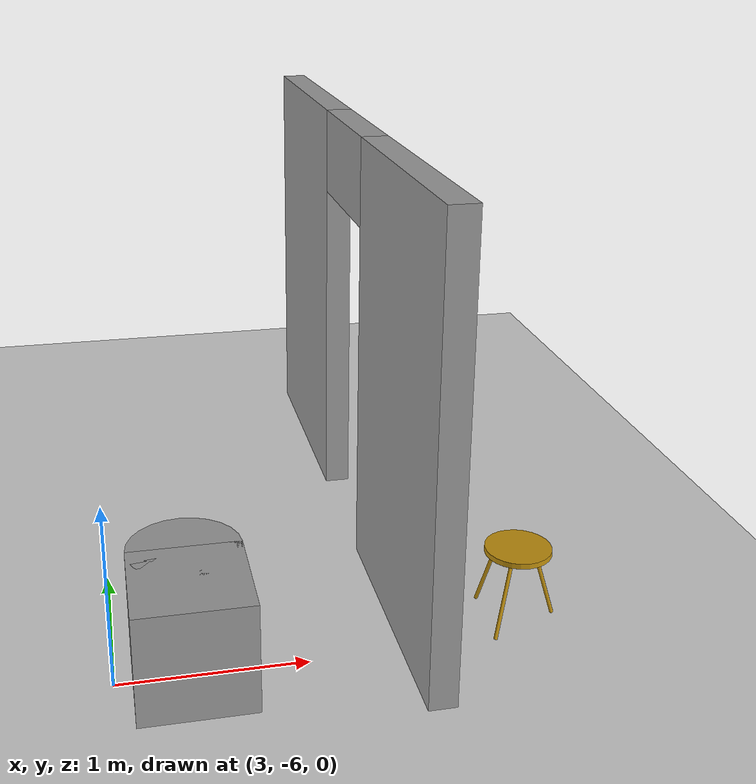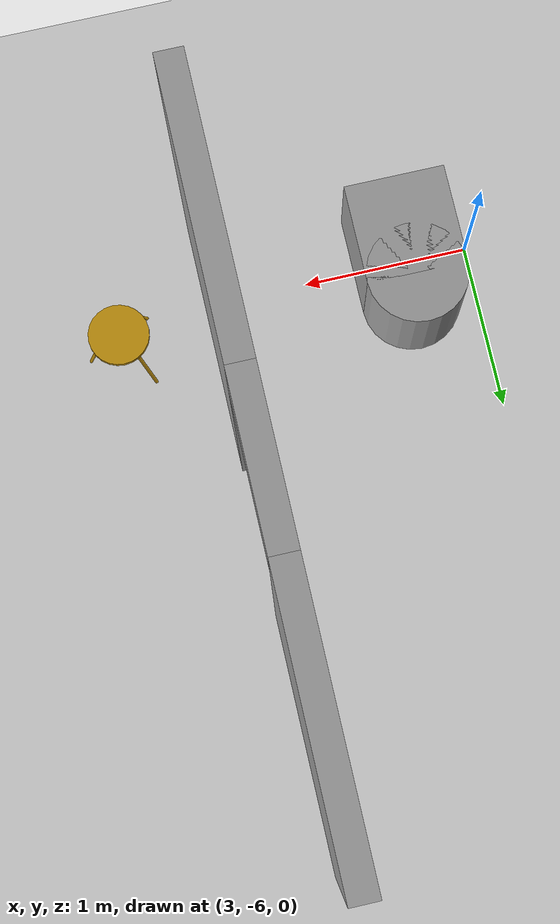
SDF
<sdf version="1.7">
 <world name="default">
  <model name="ground_plane">
   <static>1</static>
   <link name="link">
    <collision name="collision">
     <geometry><plane><normal>0 0 1</normal><size>100 100</size></plane></geometry>
     <surface>
      <contact><collide_bitmask>65535</collide_bitmask></contact>
      <friction><ode><mu>100</mu><mu2>50</mu2></ode></friction>
     </surface>
    </collision>
    <visual name="visual">
     <cast_shadows>0</cast_shadows>
     <geometry><plane><normal>0 0 1</normal><size>100 100</size></plane></geometry>
     <material>
      <script><uri>file://media/materials/scripts/gazebo.material</uri><name>Gazebo/Grey</name></script>
     </material>
    </visual>
   </link>
  </model>
  <model name="my_building_p4">
   <link name="Wall_37">
    <pose>4.57498 -7.45997 0 0 0 -1.57079</pose>
    <visual name="Wall_37_Visual_0">
     <pose>-1.22294 0 1.25 0 -0 0</pose>
     <geometry><box><size>1.55413 0.15 2.5</size></box></geometry>
     <material>
      <script><uri>file://media/materials/scripts/gazebo.material</uri><name>Gazebo/Grey</name></script>
      <ambient>1 1 1 1</ambient>
      <shader type="pixel"/>
     </material>
     <meta><layer>0</layer></meta>
    </visual>
    <visual name="Wall_37_Visual_2">
     <pose>0.004129 0 2.25 0 -0 0</pose>
     <geometry><box><size>0.9 0.15 0.5</size></box></geometry>
     <material>
      <script><uri>file://media/materials/scripts/gazebo.material</uri><name>Gazebo/Grey</name></script>
      <ambient>1 1 1 1</ambient>
      <shader type="pixel"/>
     </material>
     <meta><layer>0</layer></meta>
    </visual>
    <visual name="Wall_37_Visual_1">
     <pose>1.22707 0 1.25 0 -0 0</pose>
     <geometry><box><size>1.54587 0.15 2.5</size></box></geometry>
     <material>
      <script><uri>file://media/materials/scripts/gazebo.material</uri><name>Gazebo/Grey</name></script>
      <ambient>1 1 1 1</ambient>
      <shader type="pixel"/>
     </material>
     <meta><layer>0</layer></meta>
    </visual>
    <collision name="Wall_37_Collision_0">
     <pose>-1.22294 0 1.25 0 -0 0</pose>
     <geometry><box><size>1.55413 0.15 2.5</size></box></geometry>
     <surface>
      <friction>
       <ode><mu>1</mu><mu2>1</mu2><fdir1>0 0 0</fdir1><slip1>0</slip1><slip2>0</slip2></ode>
       <torsional>
        <coefficient>1</coefficient>
        <patch_radius>0</patch_radius>
        <surface_radius>0</surface_radius>
        <use_patch_radius>1</use_patch_radius>
        <ode><slip>0</slip></ode>
       </torsional>
      </friction>
      <bounce><restitution_coefficient>0</restitution_coefficient><threshold>1e+06</threshold></bounce>
      <contact>
       <collide_without_contact>0</collide_without_contact>
       <collide_without_contact_bitmask>1</collide_without_contact_bitmask>
       <collide_bitmask>1</collide_bitmask>
       <ode>
        <soft_cfm>0</soft_cfm>
        <soft_erp>0.2</soft_erp>
        <kp>1e+13</kp>
        <kd>1</kd>
        <max_vel>0.01</max_vel>
        <min_depth>0</min_depth>
       </ode>
       <bullet>
        <split_impulse>1</split_impulse>
        <split_impulse_penetration_threshold>-0.01</split_impulse_penetration_threshold>
        <soft_cfm>0</soft_cfm>
        <soft_erp>0.2</soft_erp>
        <kp>1e+13</kp>
        <kd>1</kd>
       </bullet>
      </contact>
     </surface>
    </collision>
    <collision name="Wall_37_Collision_1">
     <pose>1.22707 0 1.25 0 -0 0</pose>
     <geometry><box><size>1.54587 0.15 2.5</size></box></geometry>
     <surface>
      <friction>
       <ode><mu>1</mu><mu2>1</mu2><fdir1>0 0 0</fdir1><slip1>0</slip1><slip2>0</slip2></ode>
       <torsional>
        <coefficient>1</coefficient>
        <patch_radius>0</patch_radius>
        <surface_radius>0</surface_radius>
        <use_patch_radius>1</use_patch_radius>
        <ode><slip>0</slip></ode>
       </torsional>
      </friction>
      <bounce><restitution_coefficient>0</restitution_coefficient><threshold>1e+06</threshold></bounce>
      <contact>
       <collide_without_contact>0</collide_without_contact>
       <collide_without_contact_bitmask>1</collide_without_contact_bitmask>
       <collide_bitmask>1</collide_bitmask>
       <ode>
        <soft_cfm>0</soft_cfm>
        <soft_erp>0.2</soft_erp>
        <kp>1e+13</kp>
        <kd>1</kd>
        <max_vel>0.01</max_vel>
        <min_depth>0</min_depth>
       </ode>
       <bullet>
        <split_impulse>1</split_impulse>
        <split_impulse_penetration_threshold>-0.01</split_impulse_penetration_threshold>
        <soft_cfm>0</soft_cfm>
        <soft_erp>0.2</soft_erp>
        <kp>1e+13</kp>
        <kd>1</kd>
       </bullet>
      </contact>
     </surface>
    </collision>
    <collision name="Wall_37_Collision_2">
     <pose>0.004129 0 2.25 0 -0 0</pose>
     <geometry><box><size>0.9 0.15 0.5</size></box></geometry>
     <surface>
      <friction>
       <ode><mu>1</mu><mu2>1</mu2><fdir1>0 0 0</fdir1><slip1>0</slip1><slip2>0</slip2></ode>
       <torsional>
        <coefficient>1</coefficient>
        <patch_radius>0</patch_radius>
        <surface_radius>0</surface_radius>
        <use_patch_radius>1</use_patch_radius>
        <ode><slip>0</slip></ode>
       </torsional>
      </friction>
      <bounce><restitution_coefficient>0</restitution_coefficient><threshold>1e+06</threshold></bounce>
      <contact>
       <collide_without_contact>0</collide_without_contact>
       <collide_without_contact_bitmask>1</collide_without_contact_bitmask>
       <collide_bitmask>1</collide_bitmask>
       <ode>
        <soft_cfm>0</soft_cfm>
        <soft_erp>0.2</soft_erp>
        <kp>1e+13</kp>
        <kd>1</kd>
        <max_vel>0.01</max_vel>
        <min_depth>0</min_depth>
       </ode>
       <bullet>
        <split_impulse>1</split_impulse>
        <split_impulse_penetration_threshold>-0.01</split_impulse_penetration_threshold>
        <soft_cfm>0</soft_cfm>
        <soft_erp>0.2</soft_erp>
        <kp>1e+13</kp>
        <kd>1</kd>
       </bullet>
      </contact>
     </surface>
    </collision>
   </link>
   <static>1</static>
   <pose>-0.017657 2.964 0 0 -0 0</pose>
  </model>
  <model name="my_stool">
   <link name="link">
    <inertial>
     <mass>1</mass>
     <inertia><ixx>0.145833</ixx><ixy>0</ixy><ixz>0</ixz><iyy>0.145833</iyy><iyz>0</iyz><izz>0.125</izz></inertia>
    </inertial>
    <gravity>0</gravity>
    <visual name="visual">
     <geometry><cylinder><radius>0.18</radius><length>0.03</length></cylinder></geometry>
     <material>
      <script><name>Gazebo/Grey</name><uri>file://media/materials/scripts/gazebo.material</uri></script>
      <shader type="pixel"><normal_map>__default__</normal_map></shader>
      <ambient>0.75 0.56 0.05 1</ambient>
      <diffuse>0.75 0.56 0.05 1</diffuse>
      <specular>0.01 0.01 0.01 1</specular>
      <emissive>0 0 0 1</emissive>
     </material>
     <pose>0 0 0.42 0 -0 0</pose>
    </visual>
    <collision name="collision">
     <pose>0 0 0.42 0 -0 0</pose>
     <geometry><cylinder><radius>0.18</radius><length>0.03</length></cylinder></geometry>
     <surface>
      <friction>
       <ode><mu>1</mu><mu2>1</mu2><fdir1>0 0 0</fdir1><slip1>0</slip1><slip2>0</slip2></ode>
       <torsional>
        <coefficient>1</coefficient>
        <patch_radius>0</patch_radius>
        <surface_radius>0</surface_radius>
        <use_patch_radius>1</use_patch_radius>
        <ode><slip>0</slip></ode>
       </torsional>
      </friction>
      <bounce><restitution_coefficient>0</restitution_coefficient><threshold>1e+06</threshold></bounce>
      <contact>
       <collide_without_contact>0</collide_without_contact>
       <collide_without_contact_bitmask>1</collide_without_contact_bitmask>
       <collide_bitmask>1</collide_bitmask>
       <ode>
        <soft_cfm>0</soft_cfm>
        <soft_erp>0.2</soft_erp>
        <kp>1e+13</kp>
        <kd>1</kd>
        <max_vel>0.01</max_vel>
        <min_depth>0</min_depth>
       </ode>
       <bullet>
        <split_impulse>1</split_impulse>
        <split_impulse_penetration_threshold>-0.01</split_impulse_penetration_threshold>
        <soft_cfm>0</soft_cfm>
        <soft_erp>0.2</soft_erp>
        <kp>1e+13</kp>
        <kd>1</kd>
       </bullet>
      </contact>
     </surface>
    </collision>
   </link>
   <link name="link_clone">
    <inertial>
     <mass>1</mass>
     <inertia><ixx>0.145833</ixx><ixy>0</ixy><ixz>0</ixz><iyy>0.145833</iyy><iyz>0</iyz><izz>0.125</izz></inertia>
    </inertial>
    <pose>0.154365 -0.002852 0.007514 0 -0 0</pose>
    <gravity>0</gravity>
    <visual name="visual">
     <geometry><cylinder><radius>0.01</radius><length>0.42</length></cylinder></geometry>
     <material>
      <script><name>Gazebo/Grey</name><uri>file://media/materials/scripts/gazebo.material</uri></script>
      <shader type="pixel"><normal_map>__default__</normal_map></shader>
      <ambient>0.75 0.56 0.05 1</ambient>
      <diffuse>0.75 0.56 0.05 1</diffuse>
      <specular>0.01 0.01 0.01 1</specular>
      <emissive>0 0 0 1</emissive>
     </material>
     <pose>0 0 0.196 0 -0.3 0</pose>
    </visual>
    <collision name="collision">
     <pose>0 0 0.196 0 -0.3 0</pose>
     <geometry><cylinder><radius>0.01</radius><length>0.42</length></cylinder></geometry>
     <surface>
      <friction>
       <ode><mu>1</mu><mu2>1</mu2><fdir1>0 0 0</fdir1><slip1>0</slip1><slip2>0</slip2></ode>
       <torsional>
        <coefficient>1</coefficient>
        <patch_radius>0</patch_radius>
        <surface_radius>0</surface_radius>
        <use_patch_radius>1</use_patch_radius>
        <ode><slip>0</slip></ode>
       </torsional>
      </friction>
      <bounce><restitution_coefficient>0</restitution_coefficient><threshold>1e+06</threshold></bounce>
      <contact>
       <collide_without_contact>0</collide_without_contact>
       <collide_without_contact_bitmask>1</collide_without_contact_bitmask>
       <collide_bitmask>1</collide_bitmask>
       <ode>
        <soft_cfm>0</soft_cfm>
        <soft_erp>0.2</soft_erp>
        <kp>1e+13</kp>
        <kd>1</kd>
        <max_vel>0.01</max_vel>
        <min_depth>0</min_depth>
       </ode>
       <bullet>
        <split_impulse>1</split_impulse>
        <split_impulse_penetration_threshold>-0.01</split_impulse_penetration_threshold>
        <soft_cfm>0</soft_cfm>
        <soft_erp>0.2</soft_erp>
        <kp>1e+13</kp>
        <kd>1</kd>
       </bullet>
      </contact>
     </surface>
    </collision>
   </link>
   <link name="link_clone_clone">
    <inertial>
     <mass>1</mass>
     <inertia><ixx>0.145833</ixx><ixy>0</ixy><ixz>0</ixz><iyy>0.145833</iyy><iyz>0</iyz><izz>0.125</izz></inertia>
    </inertial>
    <pose>-0.108427 0.162559 0.007514 0 -0 2.21012</pose>
    <gravity>0</gravity>
    <visual name="visual">
     <geometry><cylinder><radius>0.01</radius><length>0.42</length></cylinder></geometry>
     <material>
      <script><name>Gazebo/Grey</name><uri>file://media/materials/scripts/gazebo.material</uri></script>
      <shader type="pixel"><normal_map>__default__</normal_map></shader>
      <ambient>0.75 0.56 0.05 1</ambient>
      <diffuse>0.75 0.56 0.05 1</diffuse>
      <specular>0.01 0.01 0.01 1</specular>
      <emissive>0 0 0 1</emissive>
     </material>
     <pose>0 0 0.196 0 -0.3 0</pose>
    </visual>
    <collision name="collision">
     <pose>0 0 0.14 0 -0.3 0</pose>
     <geometry><cylinder><radius>0.01</radius><length>0.42</length></cylinder></geometry>
     <surface>
      <friction>
       <ode><mu>1</mu><mu2>1</mu2><fdir1>0 0 0</fdir1><slip1>0</slip1><slip2>0</slip2></ode>
       <torsional>
        <coefficient>1</coefficient>
        <patch_radius>0</patch_radius>
        <surface_radius>0</surface_radius>
        <use_patch_radius>1</use_patch_radius>
        <ode><slip>0</slip></ode>
       </torsional>
      </friction>
      <bounce><restitution_coefficient>0</restitution_coefficient><threshold>1e+06</threshold></bounce>
      <contact>
       <collide_without_contact>0</collide_without_contact>
       <collide_without_contact_bitmask>1</collide_without_contact_bitmask>
       <collide_bitmask>1</collide_bitmask>
       <ode>
        <soft_cfm>0</soft_cfm>
        <soft_erp>0.2</soft_erp>
        <kp>1e+13</kp>
        <kd>1</kd>
        <max_vel>0.01</max_vel>
        <min_depth>0</min_depth>
       </ode>
       <bullet>
        <split_impulse>1</split_impulse>
        <split_impulse_penetration_threshold>-0.01</split_impulse_penetration_threshold>
        <soft_cfm>0</soft_cfm>
        <soft_erp>0.2</soft_erp>
        <kp>1e+13</kp>
        <kd>1</kd>
       </bullet>
      </contact>
     </surface>
    </collision>
   </link>
   <link name="link_clone_clone_clone">
    <inertial>
     <mass>1</mass>
     <inertia><ixx>0.145833</ixx><ixy>0</ixy><ixz>0</ixz><iyy>0.145833</iyy><iyz>0</iyz><izz>0.125</izz></inertia>
    </inertial>
    <pose>-0.123134 -0.149725 0.010416 0 0 -2.45292</pose>
    <visual name="visual">
     <geometry><cylinder><radius>0.01</radius><length>0.42</length></cylinder></geometry>
     <material>
      <script><name>Gazebo/Grey</name><uri>file://media/materials/scripts/gazebo.material</uri></script>
      <shader type="pixel"><normal_map>__default__</normal_map></shader>
      <ambient>0.75 0.56 0.05 1</ambient>
      <diffuse>0.75 0.56 0.05 1</diffuse>
      <specular>0.01 0.01 0.01 1</specular>
      <emissive>0 0 0 1</emissive>
     </material>
     <pose>0 0 0.196 0 -0.3 0</pose>
    </visual>
    <collision name="collision">
     <pose>0 0 0.196 0 -0.3 0</pose>
     <geometry><cylinder><radius>0.01</radius><length>0.42</length></cylinder></geometry>
     <surface>
      <friction>
       <ode><mu>1</mu><mu2>1</mu2><fdir1>0 0 0</fdir1><slip1>0</slip1><slip2>0</slip2></ode>
       <torsional>
        <coefficient>1</coefficient>
        <patch_radius>0</patch_radius>
        <surface_radius>0</surface_radius>
        <use_patch_radius>1</use_patch_radius>
        <ode><slip>0</slip></ode>
       </torsional>
      </friction>
      <bounce><restitution_coefficient>0</restitution_coefficient><threshold>1e+06</threshold></bounce>
      <contact>
       <collide_without_contact>0</collide_without_contact>
       <collide_without_contact_bitmask>1</collide_without_contact_bitmask>
       <collide_bitmask>1</collide_bitmask>
       <ode>
        <soft_cfm>0</soft_cfm>
        <soft_erp>0.2</soft_erp>
        <kp>1e+13</kp>
        <kd>1</kd>
        <max_vel>0.01</max_vel>
        <min_depth>0</min_depth>
       </ode>
       <bullet>
        <split_impulse>1</split_impulse>
        <split_impulse_penetration_threshold>-0.01</split_impulse_penetration_threshold>
        <soft_cfm>0</soft_cfm>
        <soft_erp>0.2</soft_erp>
        <kp>1e+13</kp>
        <kd>1</kd>
       </bullet>
      </contact>
     </surface>
    </collision>
   </link>
   <static>1</static>
   <pose>5.16591 -5.81824 0 0 -0 0</pose>
  </model>
  <model name="my_wc">
   <link name="link_0">
    <inertial>
     <mass>1</mass>
     <inertia><ixx>0.145833</ixx><ixy>0</ixy><ixz>0</ixz><iyy>0.145833</iyy><iyz>0</iyz><izz>0.125</izz></inertia>
    </inertial>
    <pose>-0.099947 0.388834 0 0 -0 0</pose>
    <visual name="visual">
     <pose>0 0 0.3 0 -0 0</pose>
     <geometry><cylinder><radius>0.3</radius><length>0.6</length></cylinder></geometry>
     <material>
      <lighting>1</lighting>
      <script><uri>file://media/materials/scripts/gazebo.material</uri><name>Gazebo/Grey</name></script>
      <shader type="pixel"><normal_map>__default__</normal_map></shader>
      <ambient>0.9 0.9 0.9 1</ambient>
      <diffuse>0.9 0.9 0.9 1</diffuse>
      <specular>0.01 0.01 0.01 1</specular>
      <emissive>0 0 0 1</emissive>
     </material>
    </visual>
    <collision name="collision">
     <pose>0 0 0.3 0 -0 0</pose>
     <geometry><cylinder><radius>0.3</radius><length>0.6</length></cylinder></geometry>
     <surface>
      <friction>
       <ode><mu>1</mu><mu2>1</mu2><fdir1>0 0 0</fdir1><slip1>0</slip1><slip2>0</slip2></ode>
       <torsional>
        <coefficient>1</coefficient>
        <patch_radius>0</patch_radius>
        <surface_radius>0</surface_radius>
        <use_patch_radius>1</use_patch_radius>
        <ode><slip>0</slip></ode>
       </torsional>
      </friction>
      <bounce><restitution_coefficient>0</restitution_coefficient><threshold>1e+06</threshold></bounce>
      <contact>
       <collide_without_contact>0</collide_without_contact>
       <collide_without_contact_bitmask>1</collide_without_contact_bitmask>
       <collide_bitmask>1</collide_bitmask>
       <ode>
        <soft_cfm>0</soft_cfm>
        <soft_erp>0.2</soft_erp>
        <kp>1e+13</kp>
        <kd>1</kd>
        <max_vel>0.01</max_vel>
        <min_depth>0</min_depth>
       </ode>
       <bullet>
        <split_impulse>1</split_impulse>
        <split_impulse_penetration_threshold>-0.01</split_impulse_penetration_threshold>
        <soft_cfm>0</soft_cfm>
        <soft_erp>0.2</soft_erp>
        <kp>1e+13</kp>
        <kd>1</kd>
       </bullet>
      </contact>
     </surface>
    </collision>
   </link>
   <link name="link_2">
    <inertial>
     <mass>1</mass>
     <inertia>
      <ixx>0.166667</ixx>
      <ixy>0</ixy>
      <ixz>0</ixz>
      <iyy>0.166667</iyy>
      <iyz>0</iyz>
      <izz>0.166667</izz>
     </inertia>
    </inertial>
    <pose>-0.099981 0.092319 0 0 -0 0</pose>
    <visual name="visual">
     <pose>0 0 0.3 0 -0 0</pose>
     <geometry><box><size>0.6 0.6 0.6</size></box></geometry>
     <material>
      <lighting>1</lighting>
      <script><uri>file://media/materials/scripts/gazebo.material</uri><name>Gazebo/Grey</name></script>
      <shader type="pixel"><normal_map>__default__</normal_map></shader>
      <ambient>0.9 0.9 0.9 1</ambient>
      <diffuse>0.9 0.9 0.9 1</diffuse>
      <specular>0.01 0.01 0.01 1</specular>
      <emissive>0 0 0 1</emissive>
     </material>
    </visual>
    <collision name="collision">
     <pose>0 0 0.3 0 -0 0</pose>
     <geometry><box><size>0.6 0.6 0.6</size></box></geometry>
     <surface>
      <friction>
       <ode><mu>1</mu><mu2>1</mu2><fdir1>0 0 0</fdir1><slip1>0</slip1><slip2>0</slip2></ode>
       <torsional>
        <coefficient>1</coefficient>
        <patch_radius>0</patch_radius>
        <surface_radius>0</surface_radius>
        <use_patch_radius>1</use_patch_radius>
        <ode><slip>0</slip></ode>
       </torsional>
      </friction>
      <bounce><restitution_coefficient>0</restitution_coefficient><threshold>1e+06</threshold></bounce>
      <contact>
       <collide_without_contact>0</collide_without_contact>
       <collide_without_contact_bitmask>1</collide_without_contact_bitmask>
       <collide_bitmask>1</collide_bitmask>
       <ode>
        <soft_cfm>0</soft_cfm>
        <soft_erp>0.2</soft_erp>
        <kp>1e+13</kp>
        <kd>1</kd>
        <max_vel>0.01</max_vel>
        <min_depth>0</min_depth>
       </ode>
       <bullet>
        <split_impulse>1</split_impulse>
        <split_impulse_penetration_threshold>-0.01</split_impulse_penetration_threshold>
        <soft_cfm>0</soft_cfm>
        <soft_erp>0.2</soft_erp>
        <kp>1e+13</kp>
        <kd>1</kd>
       </bullet>
      </contact>
     </surface>
    </collision>
   </link>
   <static>0</static>
   <pose>3.49589 -6.13858 -9e-06 0 -0 0</pose>
  </model>
 </world>
</sdf>
